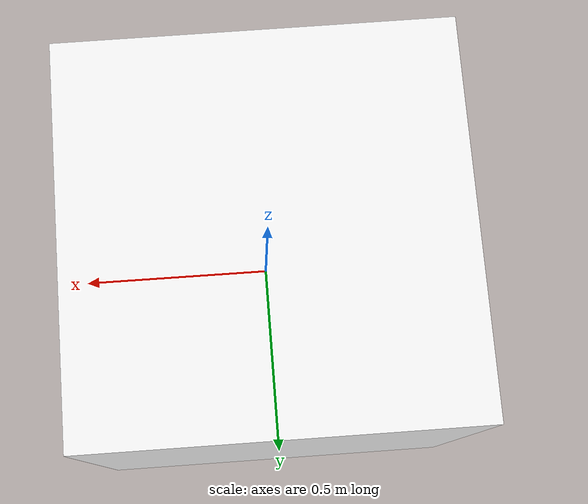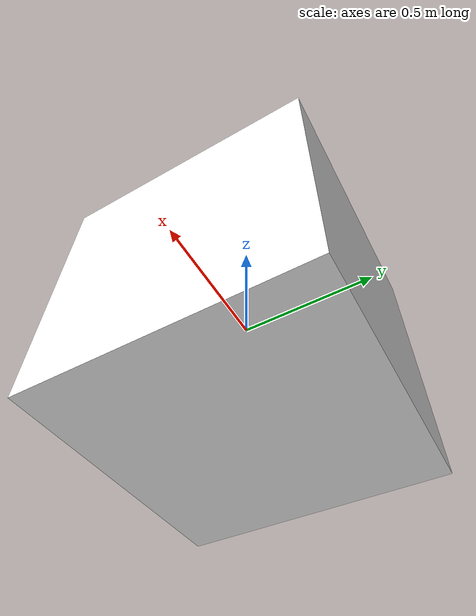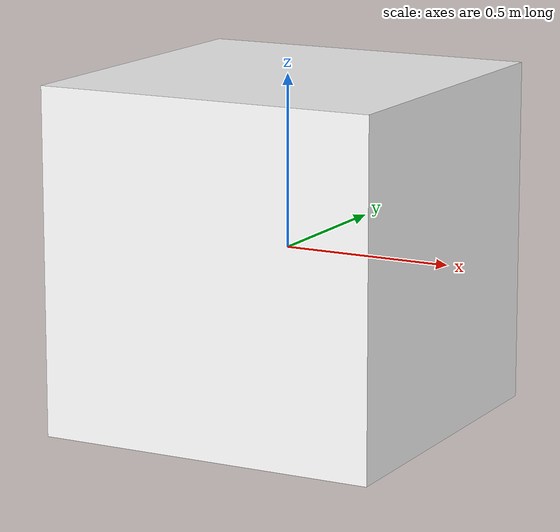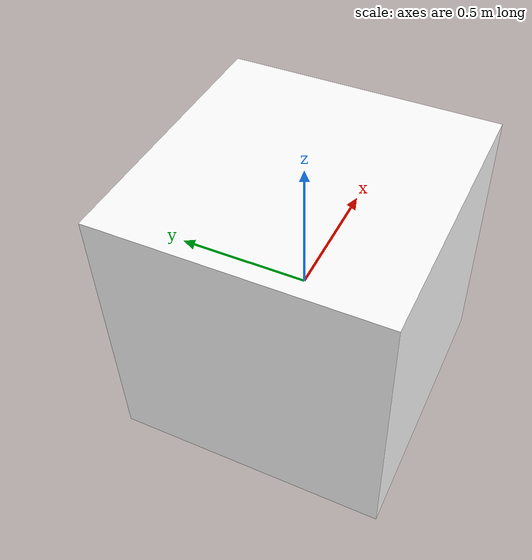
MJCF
<mujoco model="classes">
  <default>
    <default class="visual">
      <geom rgba="1 1 1 1"/>
    </default>
    <default class="collision">
      <geom rgba="0.5 0.5 0.5 0.5"/>

      <default class="foot">
        <geom type="sphere"/>
      </default>
    </default>
    <default class="hinge">
      <joint type="hinge" range="-1.57 1.57"/>
    </default>
  </default>

  <worldbody>
    <body name="body1">
      <geom type="box" size="0.5 0.5 0.5" class="visual"/>

      <body name="body2">
        <joint name="hinge_joint" class="hinge"/>
        <geom type="sphere" size="0.2" class="collision"/>

        <body name="body3">
          <geom size="0.15" class="foot"/>
        </body>
      </body>
    </body>
  </worldbody>
</mujoco>
